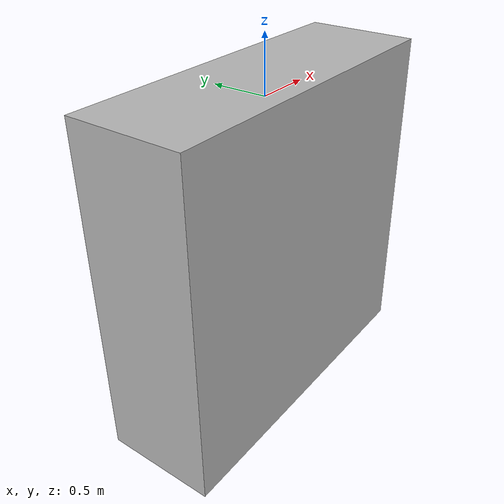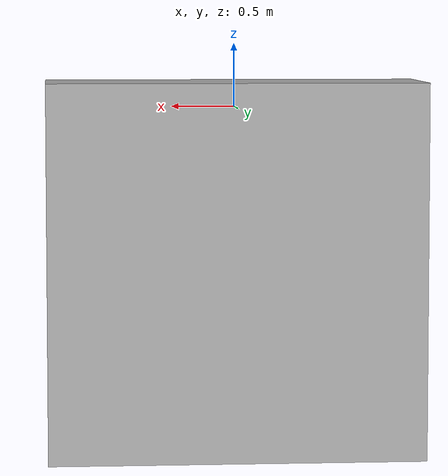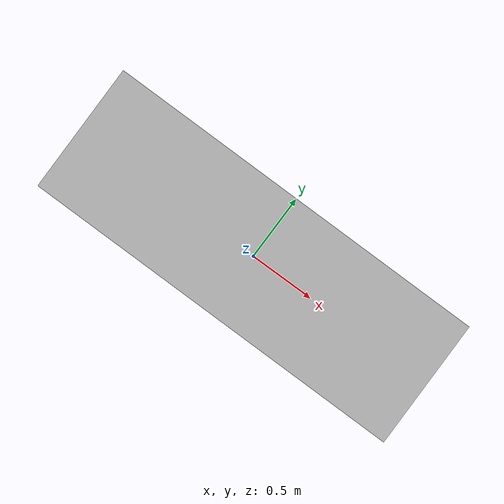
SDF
<?xml version='1.0'?>
<sdf version='1.6'>
  <model name='BrickWall'>
      <static>1</static>
      <link name='chassis'>
        <pose frame=''>0 0 -1.3 0 -0 0</pose>
        <collision name='collision'>
          <geometry>
            <box>
              <size>3 1 3</size>
            </box>
          </geometry>
          <max_contacts>10</max_contacts>
          <surface>
            <contact>
              <ode/>
            </contact>
            <bounce/>
            <friction>
              <torsional>
                <ode/>
              </torsional>
              <ode/>
            </friction>
          </surface>
        </collision>
        <visual name='visual'>
          <geometry>
            <mesh>
              <uri>../objects/BrickWall/brick_box_3x1x3/meshes/simple_box.dae</uri>
              <scale>3 1 3</scale>
            </mesh>
          </geometry>
          <material>
            <script>
              <uri>../objects/BrickWall/brick_box_3x1x3/materials/scripts</uri>
              <uri>../objects/BrickWall/brick_box_3x1x3/materials/textures</uri>
              <name>BrickBox/Diffuse</name>
            </script>
          </material>
        </visual>
        <self_collide>0</self_collide>
        <enable_wind>0</enable_wind>
        <kinematic>0</kinematic>
      </link>
      <pose frame=''>0 0 0 0 0 0</pose>
    </model>
</sdf>
